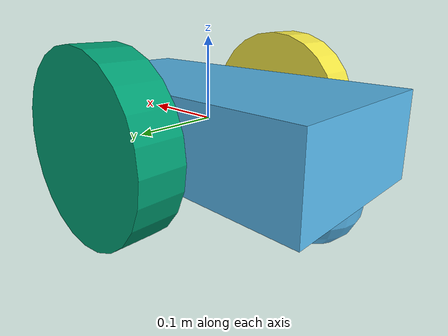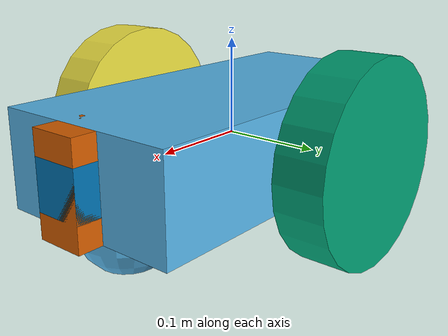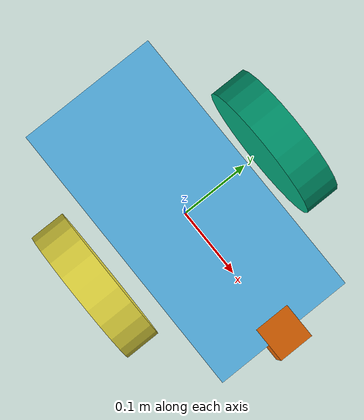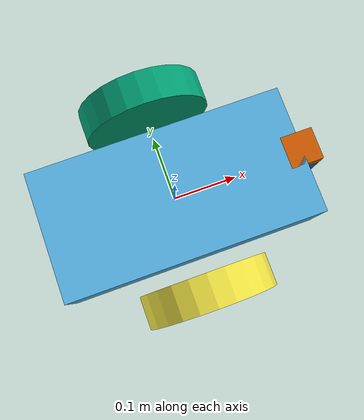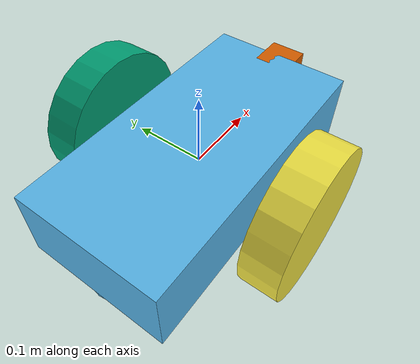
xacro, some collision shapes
<?xml version='1.0'?>

<robot name="my_robot" xmlns:xacro="http://www.ros.org/wiki/xacro">

  <xacro:include filename="$(find my_robot)/urdf/my_robot.gazebo" />

  <link name="robot_footprint"></link>

  <joint name="robot_footprint_joint" type="fixed">
    <origin xyz="0 0 0" rpy="0 0 0" />
    <parent link="robot_footprint"/>
    <child link="chassis" />
  </joint>

  <link name='chassis'>
    <pose>0 0 0.1 0 0 0</pose>

    <inertial>
      <mass value="15.0"/>
      <origin xyz="0.0 0 0" rpy=" 0 0 0"/>
      <inertia
          ixx="0.1" ixy="0" ixz="0"
          iyy="0.1" iyz="0"
          izz="0.1"
      />
    </inertial>

    <collision name='collision'>
      <origin xyz="0 0 0" rpy=" 0 0 0"/>
      <geometry>
        <box size=".4 .2 .1"/>
      </geometry>
    </collision>

    <visual name='chassis_visual'>
      <origin xyz="0 0 0" rpy=" 0 0 0"/>
      <geometry>
        <box size=".4 .2 .1"/>
      </geometry>
    </visual>

    <collision name='back_caster_collision'>
      <origin xyz="-0.15 0 -0.05" rpy=" 0 0 0"/>
      <geometry>
        <sphere radius="0.0499"/>
      </geometry>
    </collision>

    <visual name='back_caster_visual'>
      <origin xyz="-0.15 0 -0.05" rpy=" 0 0 0"/>
      <geometry>
        <sphere radius="0.05"/>
      </geometry>
    </visual>

    <collision name='front_caster_collision'>
      <origin xyz="0.15 0 -0.05" rpy=" 0 0 0"/>
      <geometry>
        <sphere radius="0.0499"/>
      </geometry>
    </collision>

    <visual name='front_caster_visual'>
      <origin xyz="0.15 0 -0.05" rpy=" 0 0 0"/>
      <geometry>
        <sphere radius="0.05"/>
      </geometry>
    </visual>
  </link>

  <link name = 'right_wheel'>
	  <visual name = 'right_wheel_visual'>
		  <origin xyz="0 0.15 0" rpy = "0 1.5707 1.5707"/>
      <geometry>
        <cylinder radius = '0.1' length = '0.05'/>
      </geometry>
	  </visual>

    <collision name = 'right_wheel_collision'>
		  <origin xyz="0 0.15 0" rpy = "0 1.5707 1.5707"/>
      <geometry>
        <cylinder radius = '0.1' length = '0.05'/>
      </geometry>
	  </collision>

    <inertial name = 'right_wheel_inertial'>
      <mass value="5.0"/>
      <origin xyz="0 0 0" rpy = "0 1.5707 1.5707"/>
      <inertia
          ixx="0.1" ixy="0" ixz="0"
          iyy="0.1" iyz="0"
          izz="0.1"
      />
    </inertial>
  </link>
  <joint name = "right_wheel_hinge" type = "continuous">
    <origin xyz = "0 0 0" rpy = "0 0 0" />
    <child link = "right_wheel"/>
    <parent link = "chassis"/>
    <axis xyz = "0 1 0" rpy = "0 0 0"/>
    <limit effort = "10000" velocity = "1000"/>
    <dynamics damping = "1.0" friction = "1.0"/>
  </joint>

  <link name = 'left_wheel'>
	  <visual name = 'left_wheel_visual'>
		  <origin xyz="0 -0.15 0" rpy = "0 1.5707 1.5707"/>
      <geometry>
        <cylinder radius = '0.1' length = '0.05'/>
      </geometry>
	  </visual>

    <collision name = 'left_wheel_collision'>
		  <origin xyz="0 -0.15 0" rpy = "0 1.5707 1.5707"/>
      <geometry>
        <cylinder radius = '0.1' length = '0.05'/>
      </geometry>
	  </collision>

    <inertial name = 'left_wheel_inertial'>
      <mass value="5.0"/>
      <origin xyz="0 0 0" rpy = "0 1.5707 1.5707"/>
      <inertia
          ixx="0.1" ixy="0" ixz="0"
          iyy="0.1" iyz="0"
          izz="0.1"
      />
    </inertial>
  </link>
  <joint name = "left_wheel_hinge" type = "continuous">
    <origin xyz = "0 0 0" rpy = "0 0 0" />
    <child link = "left_wheel"/>
    <parent link = "chassis"/>
    <axis xyz = "0 1 0" rpy = "0 0 0"/>
    <limit effort = "10000" velocity = "1000"/>
    <dynamics damping = "1.0" friction = "1.0"/>
  </joint>

  <link name = 'camera'>
	  <visual name = 'camera_visual'>
		  <origin xyz="0 0 0" rpy = "0 0 0"/>
      <geometry>
        <box size = "0.05 0.05 0.05"/>
      </geometry>
	  </visual>

    <collision name = 'camera_collision'>
		  <origin xyz="0 0 0" rpy = "0 0 0"/>
      <geometry>
        <box size = "0.05 0.05 0.05"/>
      </geometry>
	  </collision>

    <inertial name = 'camera_inertial'>
      <mass value="0.1"/>
      <inertia
          ixx="1e-6" ixy="0" ixz="0"
          iyy="1e-6" iyz="0"
          izz="1e-6"
      />
    </inertial>
  </link>
  <joint name = "camera_joint" type = "fixed">
    <origin xyz = "0.2 0 0" rpy = "0 0 0" />
    <child link = "camera"/>
    <parent link = "chassis"/>
    <axis xyz = "0 1 0" rpy = "0 0 0"/>
  </joint>
  <link name = 'hokuyo'>
	  <visual name = 'hokuyo_visual'>
		  <origin xyz="0.15 0 0.1" rpy = "0 0 0"/>
      <geometry>
        <mesh filename = "package://my_robot/meshes/hokuyo.dae"/>
      </geometry>
	  </visual>

    <collision name = 'hokuyo_collision'>
		  <origin xyz="0.2 0 0" rpy = "0 0 0"/>
      <geometry>
        <box size = "0.05 0.05 0.1"/>
      </geometry>
	  </collision>

    <inertial name = 'hokuyo_inertial'>
      <mass value="1e-5"/>
      <inertia
          ixx="1e-6" ixy="0" ixz="0"
          iyy="1e-6" iyz="0"
          izz="1e-6"
      />
    </inertial>
  </link>
  <joint name = "hokuyo_joint" type = "fixed">
    <origin xyz = "0 0 0" rpy = "0 0 0" />
    <child link = "hokuyo"/>
    <parent link = "chassis"/>
    <axis xyz = "0 1 0" rpy = "0 0 0"/>
  </joint>
</robot>
